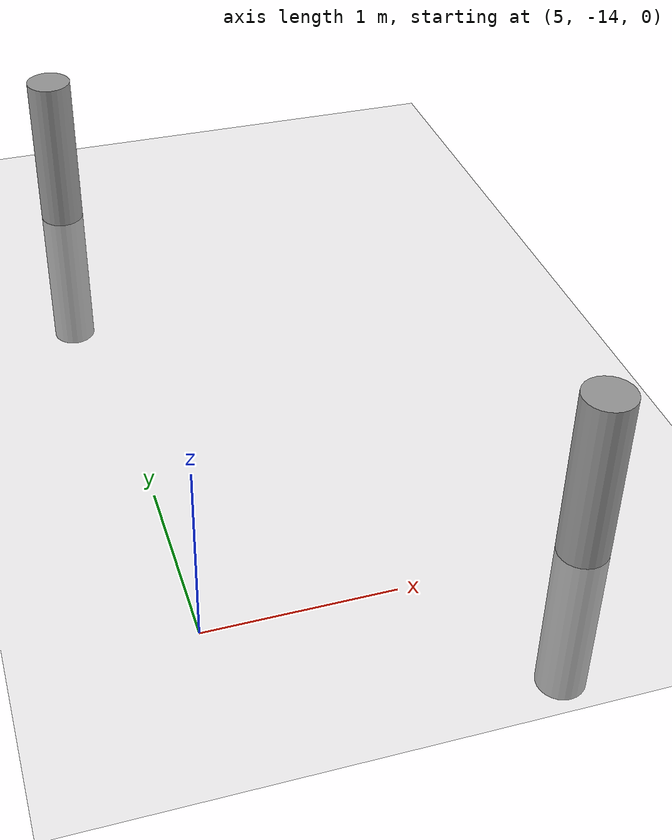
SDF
<sdf version="1.6">
 <world name="default">
  <model name="ground_plane">
   <static>1</static>
   <link name="link">
    <collision name="collision">
     <geometry><plane><normal>0 0 1</normal><size>100 100</size></plane></geometry>
     <surface><friction><ode><mu>100</mu><mu2>50</mu2></ode></friction></surface>
    </collision>
    <visual name="visual">
     <cast_shadows>0</cast_shadows>
     <geometry><plane><normal>0 0 1</normal><size>100 100</size></plane></geometry>
     <material>
      <script><uri>file://media/materials/scripts/gazebo.material</uri><name>Gazebo/Grey</name></script>
     </material>
    </visual>
   </link>
  </model>
  <model name="my_cylinder014_clone_26">
   <pose>5 -10 0 0 -0 0</pose>
   <link name="my_cylinder014::link">
    <inertial>
     <mass>1</mass>
     <inertia><ixx>0.145833</ixx><ixy>0</ixy><ixz>0</ixz><iyy>0.145833</iyy><iyz>0</iyz><izz>0.125</izz></inertia>
    </inertial>
    <visual name="visual">
     <geometry><cylinder><radius>0.14</radius><length>2</length></cylinder></geometry>
     <material>
      <script><name>Gazebo/Grey</name><uri>file://media/materials/scripts/gazebo.material</uri></script>
      <ambient>0.3 0.3 0.3 1</ambient>
      <diffuse>0.7 0.7 0.7 1</diffuse>
      <specular>1 0.01 0.01 1</specular>
      <emissive>0 0 0 1</emissive>
      <shader type="vertex"><normal_map>__default__</normal_map></shader>
     </material>
    </visual>
    <collision name="collision">
     <geometry><cylinder><radius>0.14</radius><length>2</length></cylinder></geometry>
     <surface>
      <friction>
       <ode><mu>1</mu><mu2>1</mu2><fdir1>0 0 0</fdir1><slip1>0</slip1><slip2>0</slip2></ode>
       <torsional>
        <coefficient>1</coefficient>
        <patch_radius>0</patch_radius>
        <surface_radius>0</surface_radius>
        <use_patch_radius>1</use_patch_radius>
        <ode><slip>0</slip></ode>
       </torsional>
      </friction>
      <bounce><restitution_coefficient>0</restitution_coefficient><threshold>1e+06</threshold></bounce>
      <contact>
       <collide_without_contact>0</collide_without_contact>
       <collide_without_contact_bitmask>1</collide_without_contact_bitmask>
       <collide_bitmask>1</collide_bitmask>
       <ode>
        <soft_cfm>0</soft_cfm>
        <soft_erp>0.2</soft_erp>
        <kp>1e+13</kp>
        <kd>1</kd>
        <max_vel>0.01</max_vel>
        <min_depth>0</min_depth>
       </ode>
       <bullet>
        <split_impulse>1</split_impulse>
        <split_impulse_penetration_threshold>-0.01</split_impulse_penetration_threshold>
        <soft_cfm>0</soft_cfm>
        <soft_erp>0.2</soft_erp>
        <kp>1e+13</kp>
        <kd>1</kd>
       </bullet>
      </contact>
     </surface>
    </collision>
   </link>
   <static>1</static>
  </model>
  <model name="my_cylinder014_clone_11">
   <pose>7 -14 0 0 -0 0</pose>
   <link name="my_cylinder014::link">
    <inertial>
     <mass>1</mass>
     <inertia><ixx>0.145833</ixx><ixy>0</ixy><ixz>0</ixz><iyy>0.145833</iyy><iyz>0</iyz><izz>0.125</izz></inertia>
    </inertial>
    <visual name="visual">
     <geometry><cylinder><radius>0.14</radius><length>2</length></cylinder></geometry>
     <material>
      <script><name>Gazebo/Grey</name><uri>file://media/materials/scripts/gazebo.material</uri></script>
      <ambient>0.3 0.3 0.3 1</ambient>
      <diffuse>0.7 0.7 0.7 1</diffuse>
      <specular>1 0.01 0.01 1</specular>
      <emissive>0 0 0 1</emissive>
      <shader type="vertex"><normal_map>__default__</normal_map></shader>
     </material>
    </visual>
    <collision name="collision">
     <geometry><cylinder><radius>0.14</radius><length>2</length></cylinder></geometry>
     <surface>
      <friction>
       <ode><mu>1</mu><mu2>1</mu2><fdir1>0 0 0</fdir1><slip1>0</slip1><slip2>0</slip2></ode>
       <torsional>
        <coefficient>1</coefficient>
        <patch_radius>0</patch_radius>
        <surface_radius>0</surface_radius>
        <use_patch_radius>1</use_patch_radius>
        <ode><slip>0</slip></ode>
       </torsional>
      </friction>
      <bounce><restitution_coefficient>0</restitution_coefficient><threshold>1e+06</threshold></bounce>
      <contact>
       <collide_without_contact>0</collide_without_contact>
       <collide_without_contact_bitmask>1</collide_without_contact_bitmask>
       <collide_bitmask>1</collide_bitmask>
       <ode>
        <soft_cfm>0</soft_cfm>
        <soft_erp>0.2</soft_erp>
        <kp>1e+13</kp>
        <kd>1</kd>
        <max_vel>0.01</max_vel>
        <min_depth>0</min_depth>
       </ode>
       <bullet>
        <split_impulse>1</split_impulse>
        <split_impulse_penetration_threshold>-0.01</split_impulse_penetration_threshold>
        <soft_cfm>0</soft_cfm>
        <soft_erp>0.2</soft_erp>
        <kp>1e+13</kp>
        <kd>1</kd>
       </bullet>
      </contact>
     </surface>
    </collision>
   </link>
   <static>1</static>
  </model>
  <model name="my_cylinder014_clone_26">
   <pose>5 -10 0 0 -0 0</pose>
   <link name="my_cylinder014::link">
    <inertial>
     <mass>1</mass>
     <inertia><ixx>0.145833</ixx><ixy>0</ixy><ixz>0</ixz><iyy>0.145833</iyy><iyz>0</iyz><izz>0.125</izz></inertia>
    </inertial>
    <visual name="visual">
     <geometry><cylinder><radius>0.14</radius><length>2</length></cylinder></geometry>
     <material>
      <script><name>Gazebo/Grey</name><uri>file://media/materials/scripts/gazebo.material</uri></script>
      <ambient>0.3 0.3 0.3 1</ambient>
      <diffuse>0.7 0.7 0.7 1</diffuse>
      <specular>1 0.01 0.01 1</specular>
      <emissive>0 0 0 1</emissive>
      <shader type="vertex"><normal_map>__default__</normal_map></shader>
     </material>
    </visual>
    <collision name="collision">
     <geometry><cylinder><radius>0.14</radius><length>2</length></cylinder></geometry>
     <surface>
      <friction>
       <ode><mu>1</mu><mu2>1</mu2><fdir1>0 0 0</fdir1><slip1>0</slip1><slip2>0</slip2></ode>
       <torsional>
        <coefficient>1</coefficient>
        <patch_radius>0</patch_radius>
        <surface_radius>0</surface_radius>
        <use_patch_radius>1</use_patch_radius>
        <ode><slip>0</slip></ode>
       </torsional>
      </friction>
      <bounce><restitution_coefficient>0</restitution_coefficient><threshold>1e+06</threshold></bounce>
      <contact>
       <collide_without_contact>0</collide_without_contact>
       <collide_without_contact_bitmask>1</collide_without_contact_bitmask>
       <collide_bitmask>1</collide_bitmask>
       <ode>
        <soft_cfm>0</soft_cfm>
        <soft_erp>0.2</soft_erp>
        <kp>1e+13</kp>
        <kd>1</kd>
        <max_vel>0.01</max_vel>
        <min_depth>0</min_depth>
       </ode>
       <bullet>
        <split_impulse>1</split_impulse>
        <split_impulse_penetration_threshold>-0.01</split_impulse_penetration_threshold>
        <soft_cfm>0</soft_cfm>
        <soft_erp>0.2</soft_erp>
        <kp>1e+13</kp>
        <kd>1</kd>
       </bullet>
      </contact>
     </surface>
    </collision>
   </link>
   <static>1</static>
  </model>
 </world>
</sdf>
